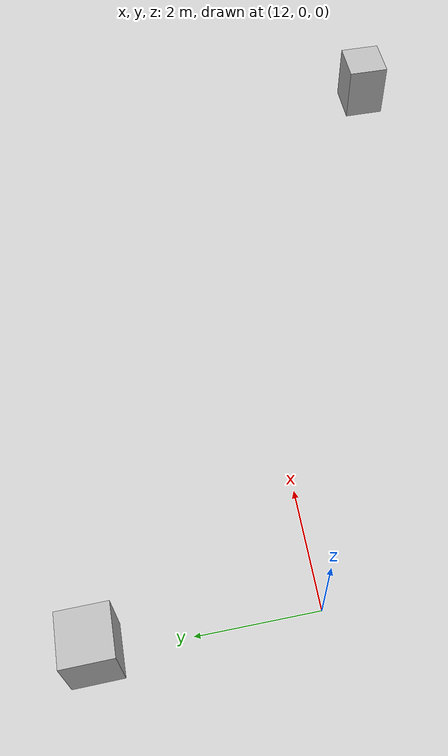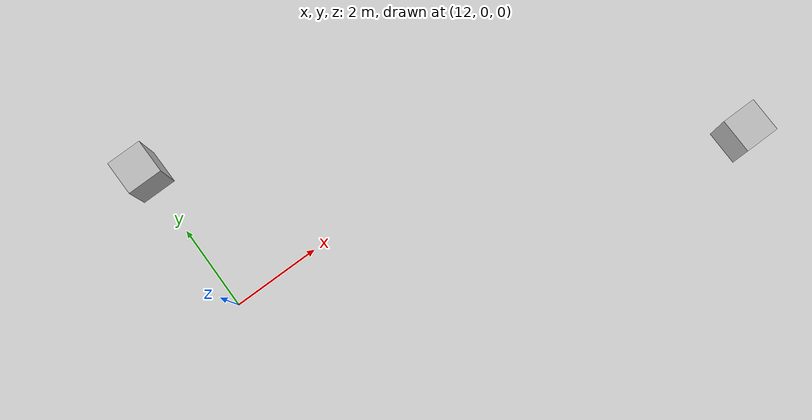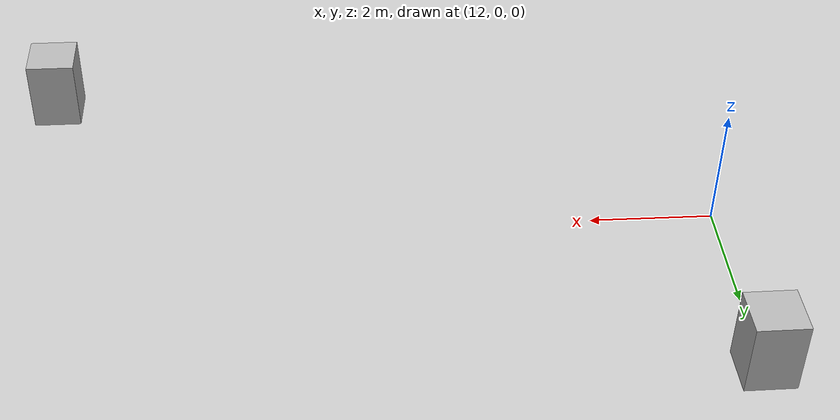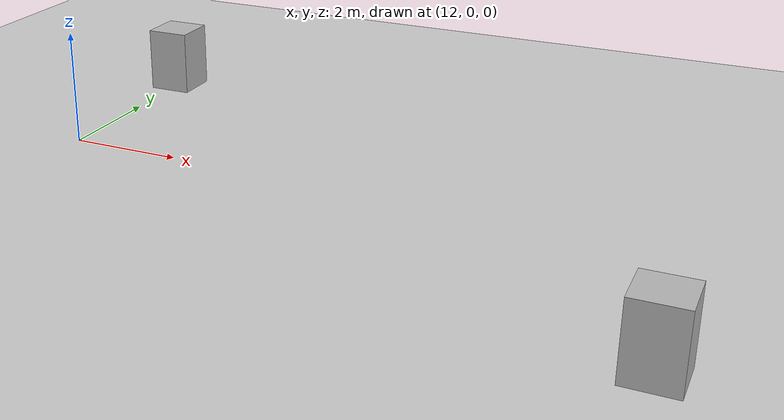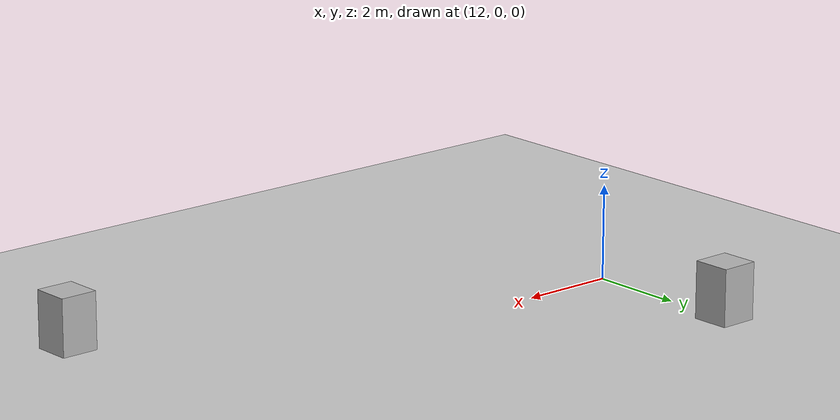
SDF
<?xml version="1.0"?>
<sdf version="1.6">
  <world name="v2-04f-cruise-s4806">
    <gravity>0 0 -9.81</gravity>
    <physics name="v2_deterministic" type="ode">
      <max_step_size>0.002</max_step_size>
      <real_time_update_rate>500</real_time_update_rate>
    </physics>
    <include>
      <uri>model://sun</uri>
    </include>
    <include>
      <uri>model://ground_plane</uri>
    </include>
    <model name="cruise-left">
      <static>true</static>
      <pose>12.010500346 3.475382715 0.600000000 0 0 0.009392930</pose>
      <link name="link">
        <collision name="collision">
          <geometry>
            <box>
              <size>0.800000 0.800000 1.200000</size>
            </box>
          </geometry>
        </collision>
        <visual name="visual">
          <geometry>
            <box>
              <size>0.800000 0.800000 1.200000</size>
            </box>
          </geometry>
        </visual>
      </link>
    </model>
    <model name="cruise-right">
      <static>true</static>
      <pose>22.957605045 -3.530695444 0.600000000 0 0 0.001029809</pose>
      <link name="link">
        <collision name="collision">
          <geometry>
            <box>
              <size>0.800000 0.800000 1.200000</size>
            </box>
          </geometry>
        </collision>
        <visual name="visual">
          <geometry>
            <box>
              <size>0.800000 0.800000 1.200000</size>
            </box>
          </geometry>
        </visual>
      </link>
    </model>
  </world>
</sdf>
